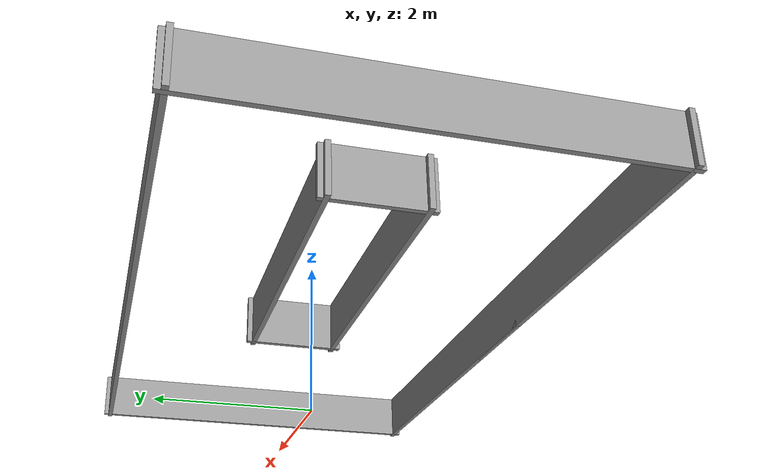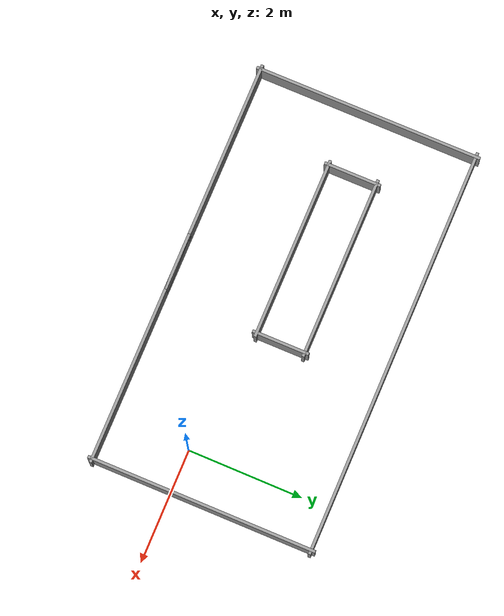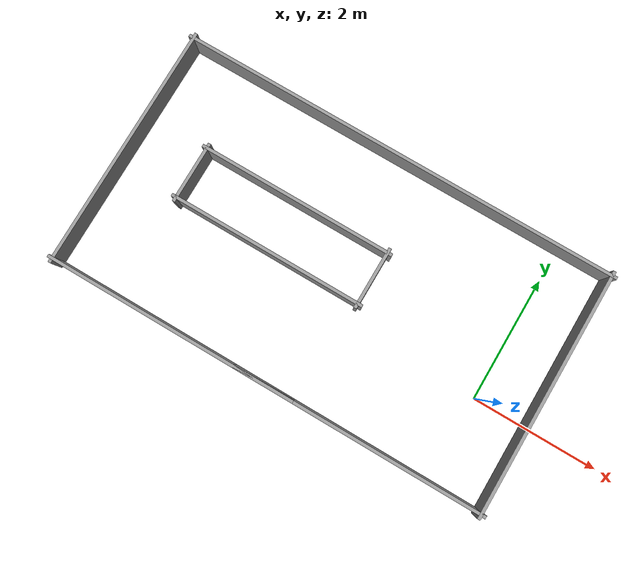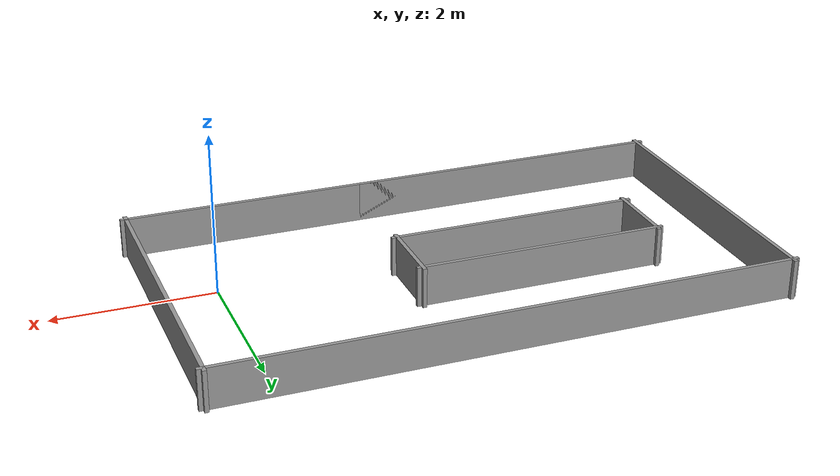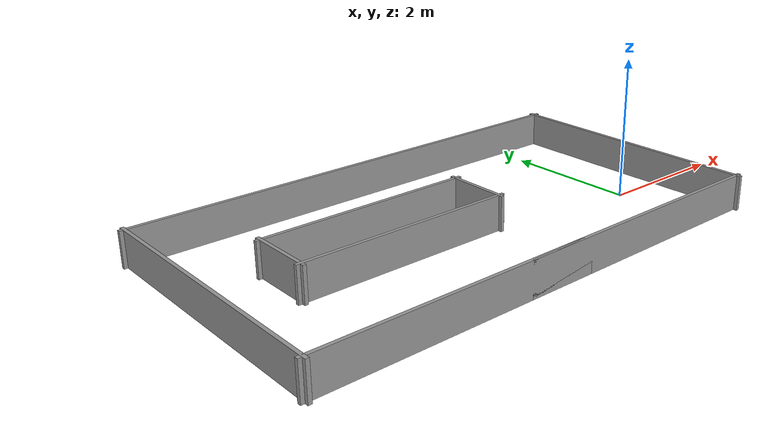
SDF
<?xml version='1.0'?>
<sdf version='1.7'>
  <model name='room'>
    <pose>-2.7432 0.559554 0 0 -0 0</pose>
    <link name='Wall_0'>
      <collision name='Wall_0_Collision'>
        <geometry>
          <box>
            <size>7.2 0.05 0.5</size>
          </box>
        </geometry>
        <pose>0 0 0.25 0 -0 0</pose>
      </collision>
      <visual name='Wall_0_Visual'>
        <pose>0 0 0.25 0 -0 0</pose>
        <geometry>
          <box>
            <size>7.2 0.05 0.5</size>
          </box>
        </geometry>
        <material>
          <script>
            <uri>file://media/materials/scripts/gazebo.material</uri>
            <name>Gazebo/Grey</name>
          </script>
          <ambient>1 1 1 1</ambient>
        </material>
        <meta>
          <layer>0</layer>
        </meta>
      </visual>
      <pose>-2e-06 -1.925 0 0 -0 -3.14024</pose>
    </link>
    <link name='Wall_1'>
      <collision name='Wall_1_Collision'>
        <geometry>
          <box>
            <size>3.2 0.05 0.5</size>
          </box>
        </geometry>
        <pose>0 0 0.25 0 -0 0</pose>
      </collision>
      <visual name='Wall_1_Visual'>
        <pose>0 0 0.25 0 -0 0</pose>
        <geometry>
          <box>
            <size>3.2 0.05 0.5</size>
          </box>
        </geometry>
        <material>
          <script>
            <uri>file://media/materials/scripts/gazebo.material</uri>
            <name>Gazebo/Grey</name>
          </script>
          <ambient>1 1 1 1</ambient>
        </material>
        <meta>
          <layer>0</layer>
        </meta>
      </visual>
      <pose>-0.9398 -0.266553 0 0 -0 0</pose>
    </link>
    <link name='Wall_10'>
      <collision name='Wall_10_Collision'>
        <geometry>
          <box>
            <size>4 0.05 0.5</size>
          </box>
        </geometry>
        <pose>0 0 0.25 0 -0 0</pose>
      </collision>
      <visual name='Wall_10_Visual'>
        <pose>0 0 0.25 0 -0 0</pose>
        <geometry>
          <box>
            <size>4 0.05 0.5</size>
          </box>
        </geometry>
        <material>
          <script>
            <uri>file://media/materials/scripts/gazebo.material</uri>
            <name>Gazebo/Grey</name>
          </script>
          <ambient>1 1 1 1</ambient>
        </material>
        <meta>
          <layer>0</layer>
        </meta>
      </visual>
      <pose>3.525 0.004783 0 0 -0 -1.5708</pose>
    </link>
    <link name='Wall_11'>
      <collision name='Wall_11_Collision'>
        <geometry>
          <box>
            <size>3.2 0.05 0.5</size>
          </box>
        </geometry>
        <pose>0 0 0.25 0 -0 0</pose>
      </collision>
      <visual name='Wall_11_Visual'>
        <pose>0 0 0.25 0 -0 0</pose>
        <geometry>
          <box>
            <size>3.2 0.05 0.5</size>
          </box>
        </geometry>
        <material>
          <script>
            <uri>file://media/materials/scripts/gazebo.material</uri>
            <name>Gazebo/Grey</name>
          </script>
          <ambient>1 1 1 1</ambient>
        </material>
        <meta>
          <layer>0</layer>
        </meta>
      </visual>
      <pose>-0.9398 0.583447 0 0 -0 0</pose>
    </link>
    <link name='Wall_12'>
      <collision name='Wall_12_Collision'>
        <geometry>
          <box>
            <size>1 0.05 0.5</size>
          </box>
        </geometry>
        <pose>0 0 0.25 0 -0 0</pose>
      </collision>
      <visual name='Wall_12_Visual'>
        <pose>0 0 0.25 0 -0 0</pose>
        <geometry>
          <box>
            <size>1 0.05 0.5</size>
          </box>
        </geometry>
        <material>
          <script>
            <uri>file://media/materials/scripts/gazebo.material</uri>
            <name>Gazebo/Grey</name>
          </script>
          <ambient>1 1 1 1</ambient>
        </material>
        <meta>
          <layer>0</layer>
        </meta>
      </visual>
      <pose>-2e-06 -1.925 0 0 -0 -3.14024</pose>
    </link>
    <link name='Wall_14'>
      <collision name='Wall_14_Collision'>
        <geometry>
          <box>
            <size>4 0.05 0.5</size>
          </box>
        </geometry>
        <pose>0 0 0.25 0 -0 0</pose>
      </collision>
      <visual name='Wall_14_Visual'>
        <pose>0 0 0.25 0 -0 0</pose>
        <geometry>
          <box>
            <size>4 0.05 0.5</size>
          </box>
        </geometry>
        <material>
          <script>
            <uri>file://media/materials/scripts/gazebo.material</uri>
            <name>Gazebo/Grey</name>
          </script>
          <ambient>1 1 1 1</ambient>
        </material>
        <meta>
          <layer>0</layer>
        </meta>
      </visual>
      <pose>-3.525 -0.004783 0 0 -0 -1.5708</pose>
    </link>
    <link name='Wall_16'>
      <collision name='Wall_16_Collision'>
        <geometry>
          <box>
            <size>3.2 0.05 0.5</size>
          </box>
        </geometry>
        <pose>0 0 0.25 0 -0 0</pose>
      </collision>
      <visual name='Wall_16_Visual'>
        <pose>0 0 0.25 0 -0 0</pose>
        <geometry>
          <box>
            <size>3.2 0.05 0.5</size>
          </box>
        </geometry>
        <material>
          <script>
            <uri>file://media/materials/scripts/gazebo.material</uri>
            <name>Gazebo/Grey</name>
          </script>
          <ambient>1 1 1 1</ambient>
        </material>
        <meta>
          <layer>0</layer>
        </meta>
      </visual>
      <pose>-0.9398 0.583447 0 0 -0 0</pose>
    </link>
    <link name='Wall_18'>
      <collision name='Wall_18_Collision'>
        <geometry>
          <box>
            <size>1 0.05 0.5</size>
          </box>
        </geometry>
        <pose>0 0 0.25 0 -0 0</pose>
      </collision>
      <visual name='Wall_18_Visual'>
        <pose>0 0 0.25 0 -0 0</pose>
        <geometry>
          <box>
            <size>1 0.05 0.5</size>
          </box>
        </geometry>
        <material>
          <script>
            <uri>file://media/materials/scripts/gazebo.material</uri>
            <name>Gazebo/Grey</name>
          </script>
          <ambient>1 1 1 1</ambient>
        </material>
        <meta>
          <layer>0</layer>
        </meta>
      </visual>
      <pose>-2.4648 0.158446 0 0 -0 -1.5708</pose>
    </link>
    <link name='Wall_19'>
      <collision name='Wall_19_Collision'>
        <geometry>
          <box>
            <size>3.2 0.05 0.5</size>
          </box>
        </geometry>
        <pose>0 0 0.25 0 -0 0</pose>
      </collision>
      <visual name='Wall_19_Visual'>
        <pose>0 0 0.25 0 -0 0</pose>
        <geometry>
          <box>
            <size>3.2 0.05 0.5</size>
          </box>
        </geometry>
        <material>
          <script>
            <uri>file://media/materials/scripts/gazebo.material</uri>
            <name>Gazebo/Grey</name>
          </script>
          <ambient>1 1 1 1</ambient>
        </material>
        <meta>
          <layer>0</layer>
        </meta>
      </visual>
      <pose>-0.9398 -0.266553 0 0 -0 0</pose>
    </link>
    <link name='Wall_2'>
      <collision name='Wall_2_Collision'>
        <geometry>
          <box>
            <size>4 0.05 0.5</size>
          </box>
        </geometry>
        <pose>0 0 0.25 0 -0 0</pose>
      </collision>
      <visual name='Wall_2_Visual'>
        <pose>0 0 0.25 0 -0 0</pose>
        <geometry>
          <box>
            <size>4 0.05 0.5</size>
          </box>
        </geometry>
        <material>
          <script>
            <uri>file://media/materials/scripts/gazebo.material</uri>
            <name>Gazebo/Grey</name>
          </script>
          <ambient>1 1 1 1</ambient>
        </material>
        <meta>
          <layer>0</layer>
        </meta>
      </visual>
      <pose>-3.525 -0.004783 0 0 -0 -1.5708</pose>
    </link>
    <link name='Wall_21'>
      <collision name='Wall_21_Collision'>
        <geometry>
          <box>
            <size>1 0.05 0.5</size>
          </box>
        </geometry>
        <pose>0 0 0.25 0 -0 0</pose>
      </collision>
      <visual name='Wall_21_Visual'>
        <pose>0 0 0.25 0 -0 0</pose>
        <geometry>
          <box>
            <size>1 0.05 0.5</size>
          </box>
        </geometry>
        <material>
          <script>
            <uri>file://media/materials/scripts/gazebo.material</uri>
            <name>Gazebo/Grey</name>
          </script>
          <ambient>1 1 1 1</ambient>
        </material>
        <meta>
          <layer>0</layer>
        </meta>
      </visual>
      <pose>0.5852 0.158446 0 0 -0 -1.5708</pose>
    </link>
    <link name='Wall_4'>
      <collision name='Wall_4_Collision'>
        <geometry>
          <box>
            <size>7.2 0.05 0.5</size>
          </box>
        </geometry>
        <pose>0 0 0.25 0 -0 0</pose>
      </collision>
      <visual name='Wall_4_Visual'>
        <pose>0 0 0.25 0 -0 0</pose>
        <geometry>
          <box>
            <size>7.2 0.05 0.5</size>
          </box>
        </geometry>
        <material>
          <script>
            <uri>file://media/materials/scripts/gazebo.material</uri>
            <name>Gazebo/Grey</name>
          </script>
          <ambient>1 1 1 1</ambient>
        </material>
        <meta>
          <layer>0</layer>
        </meta>
      </visual>
      <pose>1e-06 1.925 0 0 -0 0.001357</pose>
    </link>
    <link name='Wall_5'>
      <collision name='Wall_5_Collision'>
        <geometry>
          <box>
            <size>7.2 0.05 0.5</size>
          </box>
        </geometry>
        <pose>0 0 0.25 0 -0 0</pose>
      </collision>
      <visual name='Wall_5_Visual'>
        <pose>0 0 0.25 0 -0 0</pose>
        <geometry>
          <box>
            <size>7.2 0.05 0.5</size>
          </box>
        </geometry>
        <material>
          <script>
            <uri>file://media/materials/scripts/gazebo.material</uri>
            <name>Gazebo/Grey</name>
          </script>
          <ambient>1 1 1 1</ambient>
        </material>
        <meta>
          <layer>0</layer>
        </meta>
      </visual>
      <pose>1e-06 1.925 0 0 -0 0.001357</pose>
    </link>
    <link name='Wall_6'>
      <collision name='Wall_6_Collision'>
        <geometry>
          <box>
            <size>4 0.05 0.5</size>
          </box>
        </geometry>
        <pose>0 0 0.25 0 -0 0</pose>
      </collision>
      <visual name='Wall_6_Visual'>
        <pose>0 0 0.25 0 -0 0</pose>
        <geometry>
          <box>
            <size>4 0.05 0.5</size>
          </box>
        </geometry>
        <material>
          <script>
            <uri>file://media/materials/scripts/gazebo.material</uri>
            <name>Gazebo/Grey</name>
          </script>
          <ambient>1 1 1 1</ambient>
        </material>
        <meta>
          <layer>0</layer>
        </meta>
      </visual>
      <pose>3.525 0.004783 0 0 -0 -1.5708</pose>
    </link>
    <link name='Wall_8'>
      <collision name='Wall_8_Collision'>
        <geometry>
          <box>
            <size>1 0.05 0.5</size>
          </box>
        </geometry>
        <pose>0 0 0.25 0 -0 0</pose>
      </collision>
      <visual name='Wall_8_Visual'>
        <pose>0 0 0.25 0 -0 0</pose>
        <geometry>
          <box>
            <size>1 0.05 0.5</size>
          </box>
        </geometry>
        <material>
          <script>
            <uri>file://media/materials/scripts/gazebo.material</uri>
            <name>Gazebo/Grey</name>
          </script>
          <ambient>1 1 1 1</ambient>
        </material>
        <meta>
          <layer>0</layer>
        </meta>
      </visual>
      <pose>0.5852 0.158446 0 0 -0 -1.5708</pose>
    </link>
    <link name='Wall_9'>
      <collision name='Wall_9_Collision'>
        <geometry>
          <box>
            <size>3.2 0.05 0.5</size>
          </box>
        </geometry>
        <pose>0 0 0.25 0 -0 0</pose>
      </collision>
      <visual name='Wall_9_Visual'>
        <pose>0 0 0.25 0 -0 0</pose>
        <geometry>
          <box>
            <size>3.2 0.05 0.5</size>
          </box>
        </geometry>
        <material>
          <script>
            <uri>file://media/materials/scripts/gazebo.material</uri>
            <name>Gazebo/Grey</name>
          </script>
          <ambient>1 1 1 1</ambient>
        </material>
        <meta>
          <layer>0</layer>
        </meta>
      </visual>
      <pose>-0.9398 -0.266553 0 0 -0 0</pose>
    </link>
    <static>1</static>
  </model>
</sdf>
